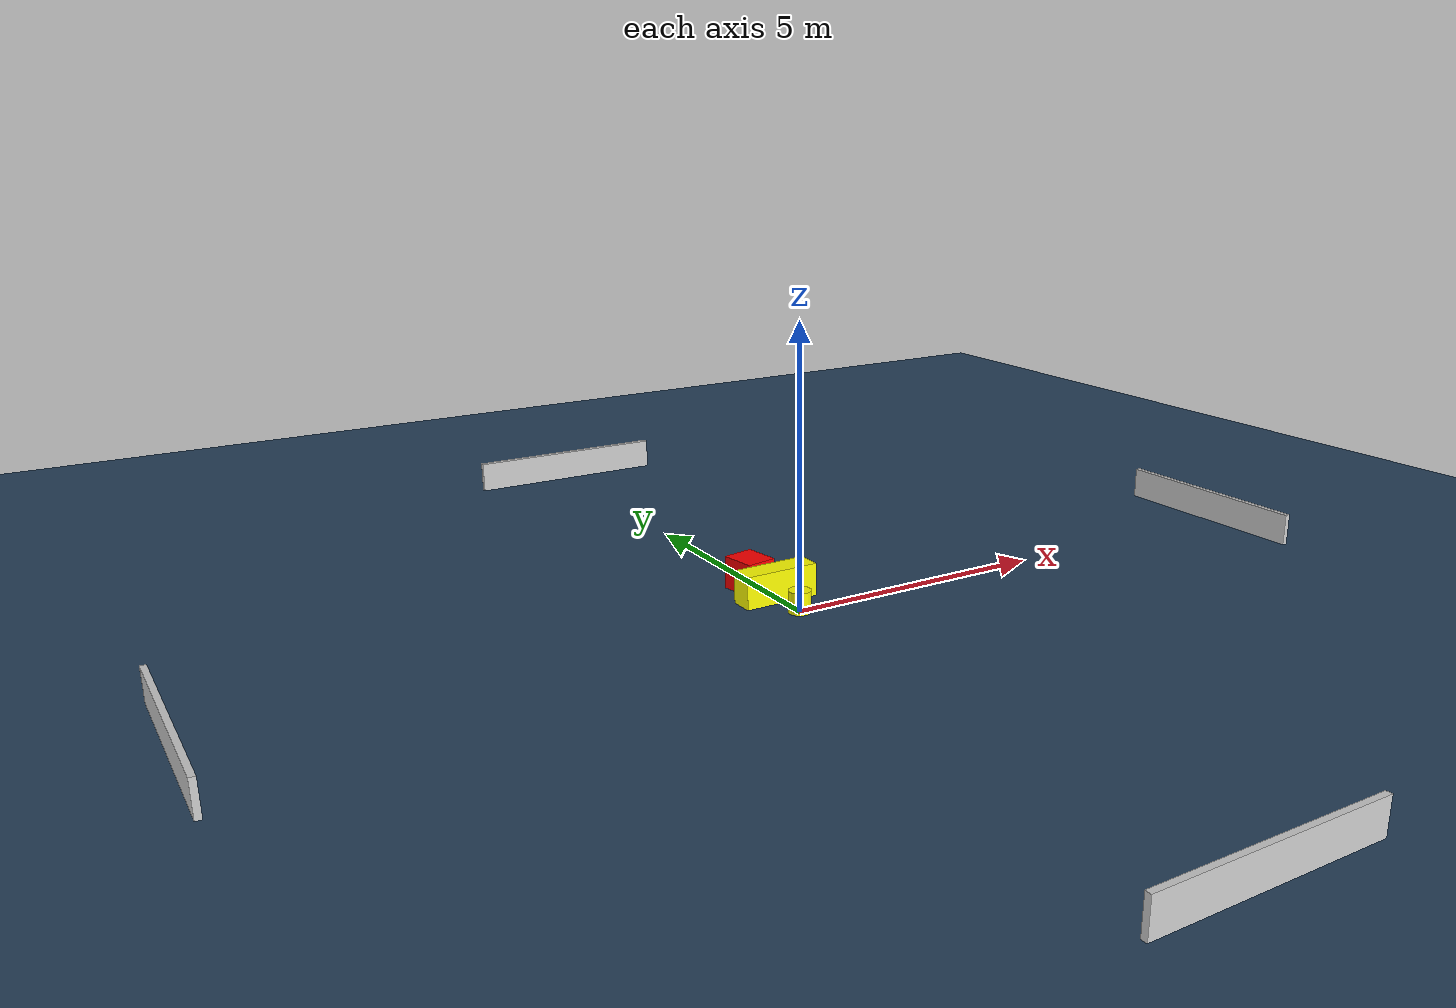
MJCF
<?xml version="1.0" ?>
<mujoco model="generated_environment">
  <option timestep="0.01" integrator="RK4" cone="elliptic"/>
  <default>
    <geom density="1"/>
  </default>
  <asset>
    <texture builtin="gradient" height="3072" name="skybox" rgb1="0.3 0.5 0.7" rgb2="0 0 0" type="skybox" width="512"/>
    <texture builtin="checker" height="300" name="groundplane" rgb1="0.2 0.3 0.4" rgb2="0.1 0.2 0.3" type="2d" width="300"/>
    <material name="groundplane" reflectance="0.2" texrepeat="5 5" texture="groundplane"/>
  </asset>
  <worldbody>
    <light dir="0 0 -1" directional="true" pos="0 0 1.5"/>
    <geom condim="3" friction="0.5 0.005 0.001" material="groundplane" name="floor" pos="0 0 0" size="0 0 0.05" type="plane"/>
    <body name="walls">
      <geom name="wall_1" condim="4" pos="-10.0 0.0 0.3" rgba="0.800000011920929 0.800000011920929 0.800000011920929 1.0" size="0.05 2.0 0.3" type="box"/>
      <geom name="wall_2" condim="4" pos="10.0 0.0 0.3" rgba="0.800000011920929 0.800000011920929 0.800000011920929 1.0" size="0.05 2.0 0.3" type="box"/>
      <geom name="wall_3" condim="4" pos="0.0 -10.0 0.3" rgba="0.800000011920929 0.800000011920929 0.800000011920929 1.0" size="2.0 0.05 0.3" type="box"/>
      <geom name="wall_4" condim="4" pos="0.0 10.0 0.3" rgba="0.800000011920929 0.800000011920929 0.800000011920929 1.0" size="2.0 0.05 0.3" type="box"/>
    </body>
    <body name="robot">
      <joint name="joint_x" type="slide" pos="0 0 0" axis="1 0 0"/>
      <joint name="joint_y" type="slide" pos="0 0 0" axis="0 1 0"/>
      <geom name="robot" type="cylinder" pos="0.0 0.0 0.2" size="0.2 0.2 0.0" mass="5.0" friction="1.0 0.005 0.0001" condim="4" rgba="1.0 1.0 0.0 1.0"/>
    </body>
    <body name="obstacle_1_movable">
      <geom name="obstacle_1_movable" condim="4" pos="-0.02962822707642437 0.7461455825230738 0.3" euler="0 0 90.72554340722797" friction="0.0 0.005 0.001" rgba="1.0 1.0 0.0 1.0" size="0.22215192193250438 0.6998942203393406 0.3" type="box" mass="0.1"/>
      <joint type="free"/>
    </body>
    <body name="obstacle_2_static">
      <geom name="obstacle_2_static" condim="4" pos="-0.1554423789623222 1.4223456725365906 0.3" euler="0 0 279.69082437994183" friction="0.0 0.005 0.001" rgba="1.0 0.0 0.0 1.0" size="0.33516591734322465 0.2881882301396382 0.3" type="box"/>
    </body>
  </worldbody>
  <actuator>
    <motor name="actuator_x" joint="joint_x" gear="1" ctrlrange="-1 1"/>
    <motor name="actuator_y" joint="joint_y" gear="1" ctrlrange="-1 1"/>
  </actuator>
</mujoco>
